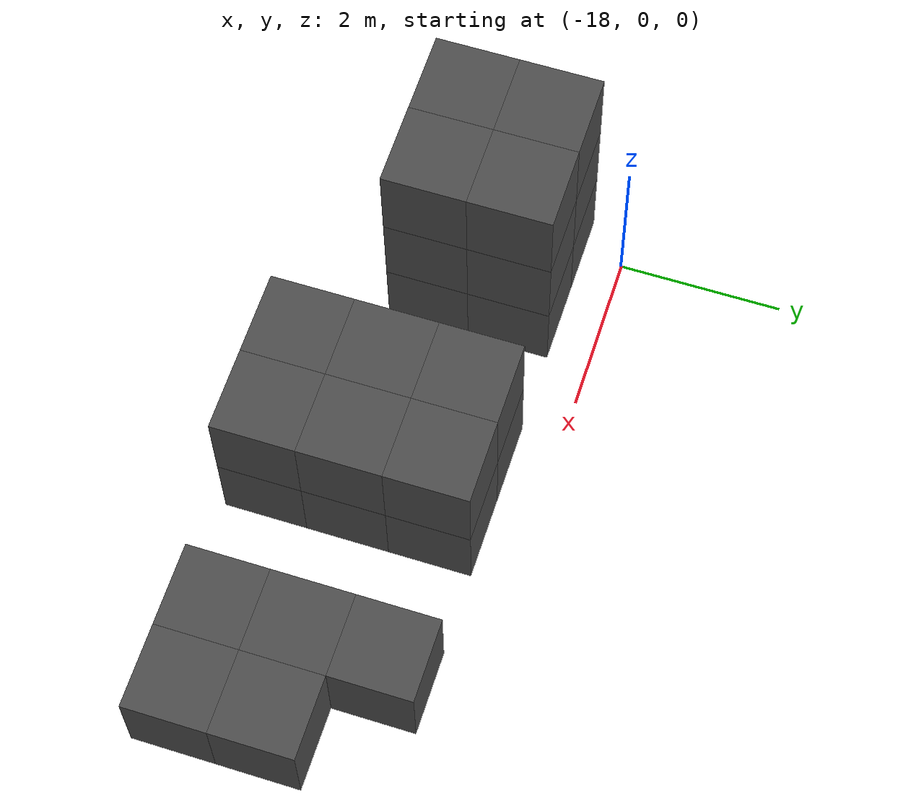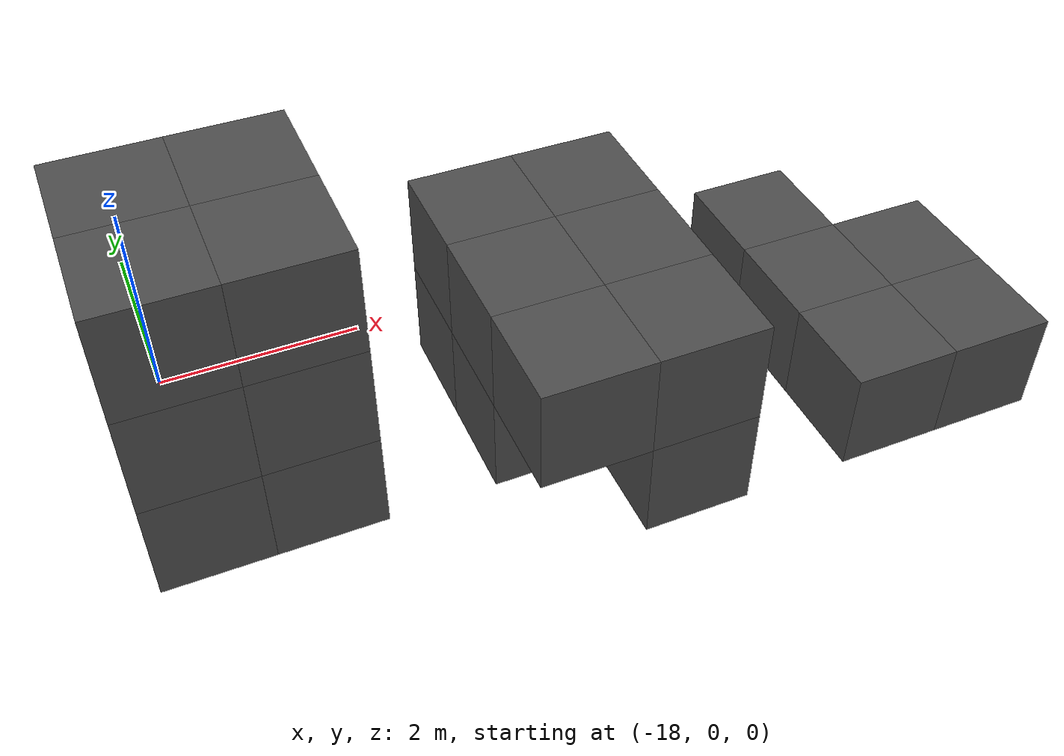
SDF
<sdf version="1.6">
 <world name="default">
  <model name="box_6">
   <pose frame="sim_world">-18.0 -2.0 0.5 0 -0 0</pose>
   <static>True</static>
   <link name="box_6_link">
    <inertial>
     <mass>100</mass>
     <inertia>
      <ixx>0.166667</ixx>
      <ixy>0</ixy>
      <ixz>0</ixz>
      <iyy>0.166667</iyy>
      <iyz>0</iyz>
      <izz>0.166667</izz>
     </inertia>
    </inertial>
    <collision name="box_6_collision">
     <geometry><box><size>1.0 1.0 1.0</size></box></geometry>
     <max_contacts>100</max_contacts>
    </collision>
    <visual name="box_6_visual">
     <geometry><box><size>1.0 1.0 1.0</size></box></geometry>
     <material><ambient>0.3 0.3 0.3 1</ambient><diffuse>0.3 0.3 0.3 1</diffuse></material>
    </visual>
   </link>
  </model>
  <model name="box_7">
   <pose frame="sim_world">-18.0 -2.0 1.5 0 -0 0</pose>
   <static>True</static>
   <link name="box_7_link">
    <inertial>
     <mass>100</mass>
     <inertia>
      <ixx>0.166667</ixx>
      <ixy>0</ixy>
      <ixz>0</ixz>
      <iyy>0.166667</iyy>
      <iyz>0</iyz>
      <izz>0.166667</izz>
     </inertia>
    </inertial>
    <collision name="box_7_collision">
     <geometry><box><size>1.0 1.0 1.0</size></box></geometry>
     <max_contacts>100</max_contacts>
    </collision>
    <visual name="box_7_visual">
     <geometry><box><size>1.0 1.0 1.0</size></box></geometry>
     <material><ambient>0.3 0.3 0.3 1</ambient><diffuse>0.3 0.3 0.3 1</diffuse></material>
    </visual>
   </link>
  </model>
  <model name="box_8">
   <pose frame="sim_world">-18.0 -2.0 2.5 0 -0 0</pose>
   <static>True</static>
   <link name="box_8_link">
    <inertial>
     <mass>100</mass>
     <inertia>
      <ixx>0.166667</ixx>
      <ixy>0</ixy>
      <ixz>0</ixz>
      <iyy>0.166667</iyy>
      <iyz>0</iyz>
      <izz>0.166667</izz>
     </inertia>
    </inertial>
    <collision name="box_8_collision">
     <geometry><box><size>1.0 1.0 1.0</size></box></geometry>
     <max_contacts>100</max_contacts>
    </collision>
    <visual name="box_8_visual">
     <geometry><box><size>1.0 1.0 1.0</size></box></geometry>
     <material><ambient>0.3 0.3 0.3 1</ambient><diffuse>0.3 0.3 0.3 1</diffuse></material>
    </visual>
   </link>
  </model>
  <model name="box_9">
   <pose frame="sim_world">-18.0 -1.0 0.5 0 -0 0</pose>
   <static>True</static>
   <link name="box_9_link">
    <inertial>
     <mass>100</mass>
     <inertia>
      <ixx>0.166667</ixx>
      <ixy>0</ixy>
      <ixz>0</ixz>
      <iyy>0.166667</iyy>
      <iyz>0</iyz>
      <izz>0.166667</izz>
     </inertia>
    </inertial>
    <collision name="box_9_collision">
     <geometry><box><size>1.0 1.0 1.0</size></box></geometry>
     <max_contacts>100</max_contacts>
    </collision>
    <visual name="box_9_visual">
     <geometry><box><size>1.0 1.0 1.0</size></box></geometry>
     <material><ambient>0.3 0.3 0.3 1</ambient><diffuse>0.3 0.3 0.3 1</diffuse></material>
    </visual>
   </link>
  </model>
  <model name="box_10">
   <pose frame="sim_world">-18.0 -1.0 1.5 0 -0 0</pose>
   <static>True</static>
   <link name="box_10_link">
    <inertial>
     <mass>100</mass>
     <inertia>
      <ixx>0.166667</ixx>
      <ixy>0</ixy>
      <ixz>0</ixz>
      <iyy>0.166667</iyy>
      <iyz>0</iyz>
      <izz>0.166667</izz>
     </inertia>
    </inertial>
    <collision name="box_10_collision">
     <geometry><box><size>1.0 1.0 1.0</size></box></geometry>
     <max_contacts>100</max_contacts>
    </collision>
    <visual name="box_10_visual">
     <geometry><box><size>1.0 1.0 1.0</size></box></geometry>
     <material><ambient>0.3 0.3 0.3 1</ambient><diffuse>0.3 0.3 0.3 1</diffuse></material>
    </visual>
   </link>
  </model>
  <model name="box_11">
   <pose frame="sim_world">-18.0 -1.0 2.5 0 -0 0</pose>
   <static>True</static>
   <link name="box_11_link">
    <inertial>
     <mass>100</mass>
     <inertia>
      <ixx>0.166667</ixx>
      <ixy>0</ixy>
      <ixz>0</ixz>
      <iyy>0.166667</iyy>
      <iyz>0</iyz>
      <izz>0.166667</izz>
     </inertia>
    </inertial>
    <collision name="box_11_collision">
     <geometry><box><size>1.0 1.0 1.0</size></box></geometry>
     <max_contacts>100</max_contacts>
    </collision>
    <visual name="box_11_visual">
     <geometry><box><size>1.0 1.0 1.0</size></box></geometry>
     <material><ambient>0.3 0.3 0.3 1</ambient><diffuse>0.3 0.3 0.3 1</diffuse></material>
    </visual>
   </link>
  </model>
  <model name="box_21">
   <pose frame="sim_world">-17.0 -2.0 0.5 0 -0 0</pose>
   <static>True</static>
   <link name="box_21_link">
    <inertial>
     <mass>100</mass>
     <inertia>
      <ixx>0.166667</ixx>
      <ixy>0</ixy>
      <ixz>0</ixz>
      <iyy>0.166667</iyy>
      <iyz>0</iyz>
      <izz>0.166667</izz>
     </inertia>
    </inertial>
    <collision name="box_21_collision">
     <geometry><box><size>1.0 1.0 1.0</size></box></geometry>
     <max_contacts>100</max_contacts>
    </collision>
    <visual name="box_21_visual">
     <geometry><box><size>1.0 1.0 1.0</size></box></geometry>
     <material><ambient>0.3 0.3 0.3 1</ambient><diffuse>0.3 0.3 0.3 1</diffuse></material>
    </visual>
   </link>
  </model>
  <model name="box_22">
   <pose frame="sim_world">-17.0 -2.0 1.5 0 -0 0</pose>
   <static>True</static>
   <link name="box_22_link">
    <inertial>
     <mass>100</mass>
     <inertia>
      <ixx>0.166667</ixx>
      <ixy>0</ixy>
      <ixz>0</ixz>
      <iyy>0.166667</iyy>
      <iyz>0</iyz>
      <izz>0.166667</izz>
     </inertia>
    </inertial>
    <collision name="box_22_collision">
     <geometry><box><size>1.0 1.0 1.0</size></box></geometry>
     <max_contacts>100</max_contacts>
    </collision>
    <visual name="box_22_visual">
     <geometry><box><size>1.0 1.0 1.0</size></box></geometry>
     <material><ambient>0.3 0.3 0.3 1</ambient><diffuse>0.3 0.3 0.3 1</diffuse></material>
    </visual>
   </link>
  </model>
  <model name="box_23">
   <pose frame="sim_world">-17.0 -2.0 2.5 0 -0 0</pose>
   <static>True</static>
   <link name="box_23_link">
    <inertial>
     <mass>100</mass>
     <inertia>
      <ixx>0.166667</ixx>
      <ixy>0</ixy>
      <ixz>0</ixz>
      <iyy>0.166667</iyy>
      <iyz>0</iyz>
      <izz>0.166667</izz>
     </inertia>
    </inertial>
    <collision name="box_23_collision">
     <geometry><box><size>1.0 1.0 1.0</size></box></geometry>
     <max_contacts>100</max_contacts>
    </collision>
    <visual name="box_23_visual">
     <geometry><box><size>1.0 1.0 1.0</size></box></geometry>
     <material><ambient>0.3 0.3 0.3 1</ambient><diffuse>0.3 0.3 0.3 1</diffuse></material>
    </visual>
   </link>
  </model>
  <model name="box_24">
   <pose frame="sim_world">-17.0 -1.0 0.5 0 -0 0</pose>
   <static>True</static>
   <link name="box_24_link">
    <inertial>
     <mass>100</mass>
     <inertia>
      <ixx>0.166667</ixx>
      <ixy>0</ixy>
      <ixz>0</ixz>
      <iyy>0.166667</iyy>
      <iyz>0</iyz>
      <izz>0.166667</izz>
     </inertia>
    </inertial>
    <collision name="box_24_collision">
     <geometry><box><size>1.0 1.0 1.0</size></box></geometry>
     <max_contacts>100</max_contacts>
    </collision>
    <visual name="box_24_visual">
     <geometry><box><size>1.0 1.0 1.0</size></box></geometry>
     <material><ambient>0.3 0.3 0.3 1</ambient><diffuse>0.3 0.3 0.3 1</diffuse></material>
    </visual>
   </link>
  </model>
  <model name="box_25">
   <pose frame="sim_world">-17.0 -1.0 1.5 0 -0 0</pose>
   <static>True</static>
   <link name="box_25_link">
    <inertial>
     <mass>100</mass>
     <inertia>
      <ixx>0.166667</ixx>
      <ixy>0</ixy>
      <ixz>0</ixz>
      <iyy>0.166667</iyy>
      <iyz>0</iyz>
      <izz>0.166667</izz>
     </inertia>
    </inertial>
    <collision name="box_25_collision">
     <geometry><box><size>1.0 1.0 1.0</size></box></geometry>
     <max_contacts>100</max_contacts>
    </collision>
    <visual name="box_25_visual">
     <geometry><box><size>1.0 1.0 1.0</size></box></geometry>
     <material><ambient>0.3 0.3 0.3 1</ambient><diffuse>0.3 0.3 0.3 1</diffuse></material>
    </visual>
   </link>
  </model>
  <model name="box_26">
   <pose frame="sim_world">-17.0 -1.0 2.5 0 -0 0</pose>
   <static>True</static>
   <link name="box_26_link">
    <inertial>
     <mass>100</mass>
     <inertia>
      <ixx>0.166667</ixx>
      <ixy>0</ixy>
      <ixz>0</ixz>
      <iyy>0.166667</iyy>
      <iyz>0</iyz>
      <izz>0.166667</izz>
     </inertia>
    </inertial>
    <collision name="box_26_collision">
     <geometry><box><size>1.0 1.0 1.0</size></box></geometry>
     <max_contacts>100</max_contacts>
    </collision>
    <visual name="box_26_visual">
     <geometry><box><size>1.0 1.0 1.0</size></box></geometry>
     <material><ambient>0.3 0.3 0.3 1</ambient><diffuse>0.3 0.3 0.3 1</diffuse></material>
    </visual>
   </link>
  </model>
  <model name="box_33">
   <pose frame="sim_world">-15.0 -3.0 1.5 0 -0 0</pose>
   <static>True</static>
   <link name="box_33_link">
    <inertial>
     <mass>100</mass>
     <inertia>
      <ixx>0.166667</ixx>
      <ixy>0</ixy>
      <ixz>0</ixz>
      <iyy>0.166667</iyy>
      <iyz>0</iyz>
      <izz>0.166667</izz>
     </inertia>
    </inertial>
    <collision name="box_33_collision">
     <geometry><box><size>1.0 1.0 1.0</size></box></geometry>
     <max_contacts>100</max_contacts>
    </collision>
    <visual name="box_33_visual">
     <geometry><box><size>1.0 1.0 1.0</size></box></geometry>
     <material><ambient>0.3 0.3 0.3 1</ambient><diffuse>0.3 0.3 0.3 1</diffuse></material>
    </visual>
   </link>
  </model>
  <model name="box_34">
   <pose frame="sim_world">-15.0 -2.0 0.5 0 -0 0</pose>
   <static>True</static>
   <link name="box_34_link">
    <inertial>
     <mass>100</mass>
     <inertia>
      <ixx>0.166667</ixx>
      <ixy>0</ixy>
      <ixz>0</ixz>
      <iyy>0.166667</iyy>
      <iyz>0</iyz>
      <izz>0.166667</izz>
     </inertia>
    </inertial>
    <collision name="box_34_collision">
     <geometry><box><size>1.0 1.0 1.0</size></box></geometry>
     <max_contacts>100</max_contacts>
    </collision>
    <visual name="box_34_visual">
     <geometry><box><size>1.0 1.0 1.0</size></box></geometry>
     <material><ambient>0.3 0.3 0.3 1</ambient><diffuse>0.3 0.3 0.3 1</diffuse></material>
    </visual>
   </link>
  </model>
  <model name="box_35">
   <pose frame="sim_world">-15.0 -2.0 1.5 0 -0 0</pose>
   <static>True</static>
   <link name="box_35_link">
    <inertial>
     <mass>100</mass>
     <inertia>
      <ixx>0.166667</ixx>
      <ixy>0</ixy>
      <ixz>0</ixz>
      <iyy>0.166667</iyy>
      <iyz>0</iyz>
      <izz>0.166667</izz>
     </inertia>
    </inertial>
    <collision name="box_35_collision">
     <geometry><box><size>1.0 1.0 1.0</size></box></geometry>
     <max_contacts>100</max_contacts>
    </collision>
    <visual name="box_35_visual">
     <geometry><box><size>1.0 1.0 1.0</size></box></geometry>
     <material><ambient>0.3 0.3 0.3 1</ambient><diffuse>0.3 0.3 0.3 1</diffuse></material>
    </visual>
   </link>
  </model>
  <model name="box_36">
   <pose frame="sim_world">-15.0 -1.0 0.5 0 -0 0</pose>
   <static>True</static>
   <link name="box_36_link">
    <inertial>
     <mass>100</mass>
     <inertia>
      <ixx>0.166667</ixx>
      <ixy>0</ixy>
      <ixz>0</ixz>
      <iyy>0.166667</iyy>
      <iyz>0</iyz>
      <izz>0.166667</izz>
     </inertia>
    </inertial>
    <collision name="box_36_collision">
     <geometry><box><size>1.0 1.0 1.0</size></box></geometry>
     <max_contacts>100</max_contacts>
    </collision>
    <visual name="box_36_visual">
     <geometry><box><size>1.0 1.0 1.0</size></box></geometry>
     <material><ambient>0.3 0.3 0.3 1</ambient><diffuse>0.3 0.3 0.3 1</diffuse></material>
    </visual>
   </link>
  </model>
  <model name="box_37">
   <pose frame="sim_world">-15.0 -1.0 1.5 0 -0 0</pose>
   <static>True</static>
   <link name="box_37_link">
    <inertial>
     <mass>100</mass>
     <inertia>
      <ixx>0.166667</ixx>
      <ixy>0</ixy>
      <ixz>0</ixz>
      <iyy>0.166667</iyy>
      <iyz>0</iyz>
      <izz>0.166667</izz>
     </inertia>
    </inertial>
    <collision name="box_37_collision">
     <geometry><box><size>1.0 1.0 1.0</size></box></geometry>
     <max_contacts>100</max_contacts>
    </collision>
    <visual name="box_37_visual">
     <geometry><box><size>1.0 1.0 1.0</size></box></geometry>
     <material><ambient>0.3 0.3 0.3 1</ambient><diffuse>0.3 0.3 0.3 1</diffuse></material>
    </visual>
   </link>
  </model>
  <model name="box_42">
   <pose frame="sim_world">-14.0 -3.0 0.5 0 -0 0</pose>
   <static>True</static>
   <link name="box_42_link">
    <inertial>
     <mass>100</mass>
     <inertia>
      <ixx>0.166667</ixx>
      <ixy>0</ixy>
      <ixz>0</ixz>
      <iyy>0.166667</iyy>
      <iyz>0</iyz>
      <izz>0.166667</izz>
     </inertia>
    </inertial>
    <collision name="box_42_collision">
     <geometry><box><size>1.0 1.0 1.0</size></box></geometry>
     <max_contacts>100</max_contacts>
    </collision>
    <visual name="box_42_visual">
     <geometry><box><size>1.0 1.0 1.0</size></box></geometry>
     <material><ambient>0.3 0.3 0.3 1</ambient><diffuse>0.3 0.3 0.3 1</diffuse></material>
    </visual>
   </link>
  </model>
  <model name="box_43">
   <pose frame="sim_world">-14.0 -3.0 1.5 0 -0 0</pose>
   <static>True</static>
   <link name="box_43_link">
    <inertial>
     <mass>100</mass>
     <inertia>
      <ixx>0.166667</ixx>
      <ixy>0</ixy>
      <ixz>0</ixz>
      <iyy>0.166667</iyy>
      <iyz>0</iyz>
      <izz>0.166667</izz>
     </inertia>
    </inertial>
    <collision name="box_43_collision">
     <geometry><box><size>1.0 1.0 1.0</size></box></geometry>
     <max_contacts>100</max_contacts>
    </collision>
    <visual name="box_43_visual">
     <geometry><box><size>1.0 1.0 1.0</size></box></geometry>
     <material><ambient>0.3 0.3 0.3 1</ambient><diffuse>0.3 0.3 0.3 1</diffuse></material>
    </visual>
   </link>
  </model>
  <model name="box_44">
   <pose frame="sim_world">-14.0 -2.0 0.5 0 -0 0</pose>
   <static>True</static>
   <link name="box_44_link">
    <inertial>
     <mass>100</mass>
     <inertia>
      <ixx>0.166667</ixx>
      <ixy>0</ixy>
      <ixz>0</ixz>
      <iyy>0.166667</iyy>
      <iyz>0</iyz>
      <izz>0.166667</izz>
     </inertia>
    </inertial>
    <collision name="box_44_collision">
     <geometry><box><size>1.0 1.0 1.0</size></box></geometry>
     <max_contacts>100</max_contacts>
    </collision>
    <visual name="box_44_visual">
     <geometry><box><size>1.0 1.0 1.0</size></box></geometry>
     <material><ambient>0.3 0.3 0.3 1</ambient><diffuse>0.3 0.3 0.3 1</diffuse></material>
    </visual>
   </link>
  </model>
  <model name="box_45">
   <pose frame="sim_world">-14.0 -2.0 1.5 0 -0 0</pose>
   <static>True</static>
   <link name="box_45_link">
    <inertial>
     <mass>100</mass>
     <inertia>
      <ixx>0.166667</ixx>
      <ixy>0</ixy>
      <ixz>0</ixz>
      <iyy>0.166667</iyy>
      <iyz>0</iyz>
      <izz>0.166667</izz>
     </inertia>
    </inertial>
    <collision name="box_45_collision">
     <geometry><box><size>1.0 1.0 1.0</size></box></geometry>
     <max_contacts>100</max_contacts>
    </collision>
    <visual name="box_45_visual">
     <geometry><box><size>1.0 1.0 1.0</size></box></geometry>
     <material><ambient>0.3 0.3 0.3 1</ambient><diffuse>0.3 0.3 0.3 1</diffuse></material>
    </visual>
   </link>
  </model>
  <model name="box_46">
   <pose frame="sim_world">-14.0 -1.0 0.5 0 -0 0</pose>
   <static>True</static>
   <link name="box_46_link">
    <inertial>
     <mass>100</mass>
     <inertia>
      <ixx>0.166667</ixx>
      <ixy>0</ixy>
      <ixz>0</ixz>
      <iyy>0.166667</iyy>
      <iyz>0</iyz>
      <izz>0.166667</izz>
     </inertia>
    </inertial>
    <collision name="box_46_collision">
     <geometry><box><size>1.0 1.0 1.0</size></box></geometry>
     <max_contacts>100</max_contacts>
    </collision>
    <visual name="box_46_visual">
     <geometry><box><size>1.0 1.0 1.0</size></box></geometry>
     <material><ambient>0.3 0.3 0.3 1</ambient><diffuse>0.3 0.3 0.3 1</diffuse></material>
    </visual>
   </link>
  </model>
  <model name="box_47">
   <pose frame="sim_world">-14.0 -1.0 1.5 0 -0 0</pose>
   <static>True</static>
   <link name="box_47_link">
    <inertial>
     <mass>100</mass>
     <inertia>
      <ixx>0.166667</ixx>
      <ixy>0</ixy>
      <ixz>0</ixz>
      <iyy>0.166667</iyy>
      <iyz>0</iyz>
      <izz>0.166667</izz>
     </inertia>
    </inertial>
    <collision name="box_47_collision">
     <geometry><box><size>1.0 1.0 1.0</size></box></geometry>
     <max_contacts>100</max_contacts>
    </collision>
    <visual name="box_47_visual">
     <geometry><box><size>1.0 1.0 1.0</size></box></geometry>
     <material><ambient>0.3 0.3 0.3 1</ambient><diffuse>0.3 0.3 0.3 1</diffuse></material>
    </visual>
   </link>
  </model>
  <model name="box_51">
   <pose frame="sim_world">-12.0 -3.0 0.5 0 -0 0</pose>
   <static>True</static>
   <link name="box_51_link">
    <inertial>
     <mass>100</mass>
     <inertia>
      <ixx>0.166667</ixx>
      <ixy>0</ixy>
      <ixz>0</ixz>
      <iyy>0.166667</iyy>
      <iyz>0</iyz>
      <izz>0.166667</izz>
     </inertia>
    </inertial>
    <collision name="box_51_collision">
     <geometry><box><size>1.0 1.0 1.0</size></box></geometry>
     <max_contacts>100</max_contacts>
    </collision>
    <visual name="box_51_visual">
     <geometry><box><size>1.0 1.0 1.0</size></box></geometry>
     <material><ambient>0.3 0.3 0.3 1</ambient><diffuse>0.3 0.3 0.3 1</diffuse></material>
    </visual>
   </link>
  </model>
  <model name="box_52">
   <pose frame="sim_world">-12.0 -2.0 0.5 0 -0 0</pose>
   <static>True</static>
   <link name="box_52_link">
    <inertial>
     <mass>100</mass>
     <inertia>
      <ixx>0.166667</ixx>
      <ixy>0</ixy>
      <ixz>0</ixz>
      <iyy>0.166667</iyy>
      <iyz>0</iyz>
      <izz>0.166667</izz>
     </inertia>
    </inertial>
    <collision name="box_52_collision">
     <geometry><box><size>1.0 1.0 1.0</size></box></geometry>
     <max_contacts>100</max_contacts>
    </collision>
    <visual name="box_52_visual">
     <geometry><box><size>1.0 1.0 1.0</size></box></geometry>
     <material><ambient>0.3 0.3 0.3 1</ambient><diffuse>0.3 0.3 0.3 1</diffuse></material>
    </visual>
   </link>
  </model>
  <model name="box_53">
   <pose frame="sim_world">-12.0 -1.0 0.5 0 -0 0</pose>
   <static>True</static>
   <link name="box_53_link">
    <inertial>
     <mass>100</mass>
     <inertia>
      <ixx>0.166667</ixx>
      <ixy>0</ixy>
      <ixz>0</ixz>
      <iyy>0.166667</iyy>
      <iyz>0</iyz>
      <izz>0.166667</izz>
     </inertia>
    </inertial>
    <collision name="box_53_collision">
     <geometry><box><size>1.0 1.0 1.0</size></box></geometry>
     <max_contacts>100</max_contacts>
    </collision>
    <visual name="box_53_visual">
     <geometry><box><size>1.0 1.0 1.0</size></box></geometry>
     <material><ambient>0.3 0.3 0.3 1</ambient><diffuse>0.3 0.3 0.3 1</diffuse></material>
    </visual>
   </link>
  </model>
  <model name="box_56">
   <pose frame="sim_world">-11.0 -3.0 0.5 0 -0 0</pose>
   <static>True</static>
   <link name="box_56_link">
    <inertial>
     <mass>100</mass>
     <inertia>
      <ixx>0.166667</ixx>
      <ixy>0</ixy>
      <ixz>0</ixz>
      <iyy>0.166667</iyy>
      <iyz>0</iyz>
      <izz>0.166667</izz>
     </inertia>
    </inertial>
    <collision name="box_56_collision">
     <geometry><box><size>1.0 1.0 1.0</size></box></geometry>
     <max_contacts>100</max_contacts>
    </collision>
    <visual name="box_56_visual">
     <geometry><box><size>1.0 1.0 1.0</size></box></geometry>
     <material><ambient>0.3 0.3 0.3 1</ambient><diffuse>0.3 0.3 0.3 1</diffuse></material>
    </visual>
   </link>
  </model>
  <model name="box_57">
   <pose frame="sim_world">-11.0 -2.0 0.5 0 -0 0</pose>
   <static>True</static>
   <link name="box_57_link">
    <inertial>
     <mass>100</mass>
     <inertia>
      <ixx>0.166667</ixx>
      <ixy>0</ixy>
      <ixz>0</ixz>
      <iyy>0.166667</iyy>
      <iyz>0</iyz>
      <izz>0.166667</izz>
     </inertia>
    </inertial>
    <collision name="box_57_collision">
     <geometry><box><size>1.0 1.0 1.0</size></box></geometry>
     <max_contacts>100</max_contacts>
    </collision>
    <visual name="box_57_visual">
     <geometry><box><size>1.0 1.0 1.0</size></box></geometry>
     <material><ambient>0.3 0.3 0.3 1</ambient><diffuse>0.3 0.3 0.3 1</diffuse></material>
    </visual>
   </link>
  </model>
  <model name="ground_plane"><link name="ground_plane"/></model>
 </world>
</sdf>
